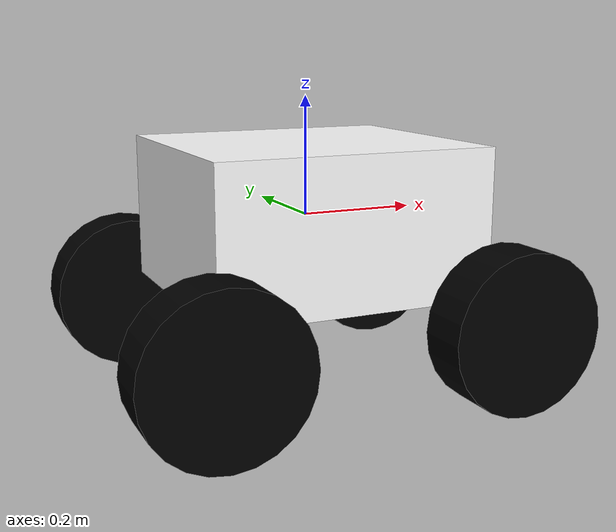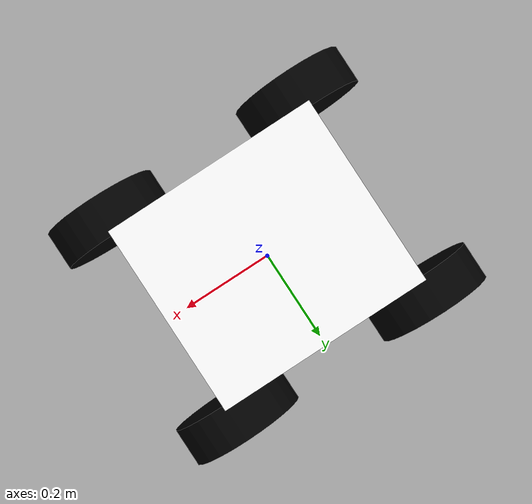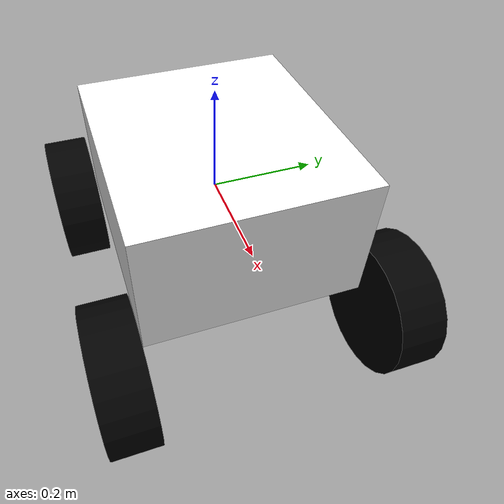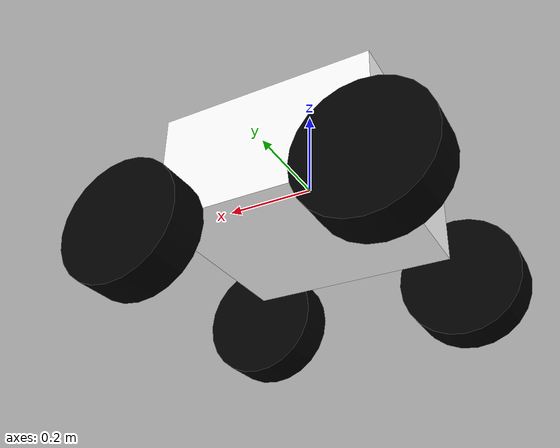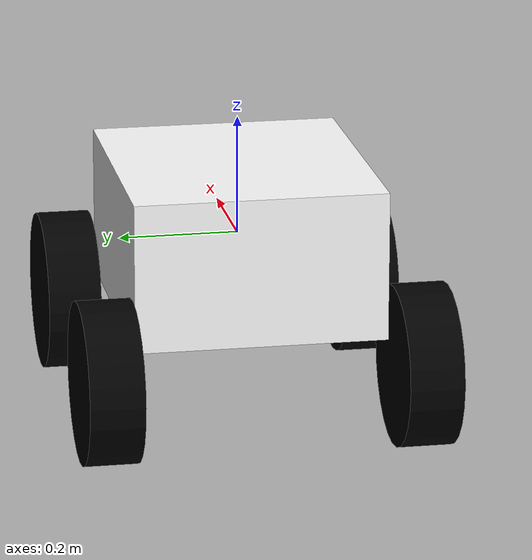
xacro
<?xml version="1.0"?>
<robot xmlns:xacro="http://www.ros.org/wiki/xacro">

    <xacro:include filename="inertial_macros.xacro"/>

    <material name="white">
        <color rgba="1 1 1 1" />
    </material>

    <material name="orange">
        <color rgba="1 0.3 0.1 1"/>
    </material>

    <material name="blue">
        <color rgba="0.2 0.2 1 1"/>
    </material>

    <material name="black">
        <color rgba="0 0 0 1"/>
    </material>

	<!-- We need to have this dummy link otherwise Gazebo will complain -->
	<link name="dummy">
	</link>
	<joint name="dummy_joint" type="fixed">
		<parent link="dummy"/>
		<child link="body_link"/>
	</joint>

	<!-- START: Body link of the robot -->
	<link name="body_link">
		<visual>
			<geometry>
				<box size="0.47 0.42 0.25" />
			</geometry>
			<origin rpy="0 0 0" xyz="0 0 0"/>
            <material name="white"/>
		</visual>
		<collision>
			<geometry>
				<box size="0.47 0.42 0.25" />
			</geometry>
			<origin rpy="0 0 0" xyz="0 0 0"/>
		</collision>
        <xacro:inertial_box mass="0.5" x="0.47" y="0.42" z="0.25">
            <origin xyz="0 0 0" rpy="0 0 0"/>
        </xacro:inertial_box>
	</link>

    <gazebo reference="body_link">
        <mu1>0.2</mu1>
        <mu2>0.2</mu2>
        <material>Gazebo/Red</material>
    </gazebo>

	<!-- End: Body link of the robot -->

	<!-- START: Back right wheel of the robot and the joint -->

	<joint name="wheel1_joint" type="continuous">
		<parent link="body_link"/>
		<child link="wheel1_link"/>
		<origin xyz="-0.25 -0.26 -0.165" rpy="0 0 0" />
		<axis xyz="0 1 0"/>
		<limit effort="1000" velocity="1000"/>
		<dynamics damping="1.0" friction="1.0"/>
	</joint>

	<link name="wheel1_link">
		<visual>
			<origin rpy="1.570795 0 0" xyz="0 0 0"/>
            <material name="black"/>
			<geometry>
				<cylinder length="0.09" radius="0.135"/>
			</geometry>
		</visual>

		<collision>
			<origin rpy="1.570795 0 0" xyz="0 0 0"/>
			<geometry>
				<cylinder length="0.09" radius="0.135"/>
			</geometry>
		</collision>
        <xacro:inertial_cylinder mass="0.1" length="0.09" radius="0.135">
            <origin xyz="0 0 0" rpy="1.570795 0 0"/>
        </xacro:inertial_cylinder>
	</link>

    <gazebo reference="wheel1_link">
        <mu1>0.2</mu1>
        <mu2>0.2</mu2>
        <material>Gazebo/Black</material>
    </gazebo>

	<!-- END: Back right wheel of the robot and the joint -->

	<!-- START: Back left wheel of the robot and the joint -->

	<joint name="wheel2_joint" type="continuous">
		<parent link="body_link"/>
		<child link="wheel2_link"/>
		<origin xyz="-0.25 0.26 -0.165" rpy="0 0 0"  />
		<axis xyz="0 1 0"/>
		<limit effort="1000" velocity="1000"/>
		<dynamics damping="1.0" friction="1.0"/>
	</joint>

	<link name="wheel2_link">
		<visual>
			<origin rpy="1.570795 0 0" xyz="0 0 0"/>
            <material name="black"/>
			<geometry>
				<cylinder length="0.09" radius="0.135"/>
			</geometry>
		</visual>

		<collision>
			<origin rpy="1.570795 0 0" xyz="0 0 0"/>
			<geometry>
				<cylinder length="0.09" radius="0.135"/>
			</geometry>
		</collision>
        <xacro:inertial_cylinder mass="0.1" length="0.09" radius="0.135">
            <origin xyz="0 0 0" rpy="1.570795 0 0"/>
        </xacro:inertial_cylinder>
	</link>

    <gazebo reference="wheel2_link">
        <mu1>0.2</mu1>
        <mu2>0.2</mu2>
        <material>Gazebo/Black</material>
    </gazebo>

	<!-- END: Back left wheel of the robot and the join -->

	<!-- START: Front right wheel of the robot and the joint -->

	<joint name="wheel3_joint" type="continuous">
		<parent link="body_link"/>
		<child link="wheel3_link"/>
		<origin xyz="0.25 -0.26 -0.165" rpy="0 0 0"/>
		<axis xyz="0 1 0"/>
		<limit effort="1000" velocity="1000"/>
		<dynamics damping="1.0" friction="1.0"/>
	</joint>

	<link name="wheel3_link">
		<visual>
			<origin rpy="1.570795 0 0" xyz="0 0 0"/>
            <material name="black"/>
			<geometry>
				<cylinder length="0.09" radius="0.135"/>
			</geometry>
		</visual>

		<collision>
			<origin rpy="1.570795 0 0" xyz="0 0 0"/>
			<geometry>
				<cylinder length="0.09" radius="0.135"/>
			</geometry>
		</collision>
        <xacro:inertial_cylinder mass="0.1" length="0.09" radius="0.135">
            <origin xyz="0 0 0" rpy="1.570795 0 0"/>
        </xacro:inertial_cylinder>
	</link>

    <gazebo reference="wheel3_link">
        <mu1>0.2</mu1>
        <mu2>0.2</mu2>
        <material>Gazebo/Black</material>
    </gazebo>

	<!-- END: Front right wheel of the robot and the joint -->

	<!-- START: Front left wheel of the robot and joint -->

	<joint name="wheel4_joint" type="continuous">
		<parent link="body_link"/>
		<child link="wheel4_link"/>
		<origin xyz="0.25 0.26 -0.165" rpy="0 0 0" />
		<axis xyz="0 1 0"/>
		<limit effort="1000" velocity="1000"/>
		<dynamics damping="1.0" friction="1.0"/>
	</joint>

	<link name="wheel4_link">
		<visual>
			<origin rpy="1.570795 0 0" xyz="0 0 0"/>
            <material name="black"/>
			<geometry>
				<cylinder length="0.09" radius="0.135"/>
			</geometry>
		</visual>

		<collision>
			<origin rpy="1.570795 0 0" xyz="0 0 0"/>
			<geometry>
				<cylinder length="0.09" radius="0.135"/>
			</geometry>
		</collision>
        <xacro:inertial_cylinder mass="0.1" length="0.09" radius="0.135">
            <origin xyz="0 0 0" rpy="1.570795 0 0"/>
        </xacro:inertial_cylinder>
	</link>

    <gazebo reference="wheel4_link">
        <mu1>0.2</mu1>
        <mu2>0.2</mu2>
        <material>Gazebo/Black</material>
    </gazebo>

	<!-- END: Front left wheel of the robot and joint -->

</robot>

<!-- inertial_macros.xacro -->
<robot xmlns:xacro="http://www.ros.org/wiki/xacro" >

    <!-- Specify some standard inertial calculations https://en.wikipedia.org/wiki/List_of_moments_of_inertia -->
    <!-- These make use of xacro's mathematical functionality -->

    <xacro:macro name="inertial_box" params="mass x y z *origin">
        <inertial>
            <xacro:insert_block name="origin"/>
            <mass value="${mass}" />
            <inertia ixx="${(1/12) * mass * (y*y+z*z)}" ixy="0.0" ixz="0.0"
                    iyy="${(1/12) * mass * (x*x+z*z)}" iyz="0.0"
                    izz="${(1/12) * mass * (x*x+y*y)}" />
        </inertial>
    </xacro:macro>

    <xacro:macro name="inertial_cylinder" params="mass length radius *origin">
        <inertial>
            <xacro:insert_block name="origin"/>
            <mass value="${mass}" />
            <inertia ixx="${(1/12) * mass * (3*radius*radius + length*length)}" ixy="0.0" ixz="0.0"
                    iyy="${(1/12) * mass * (3*radius*radius + length*length)}" iyz="0.0"
                    izz="${(1/2) * mass * (radius*radius)}" />
        </inertial>
    </xacro:macro>

</robot>
